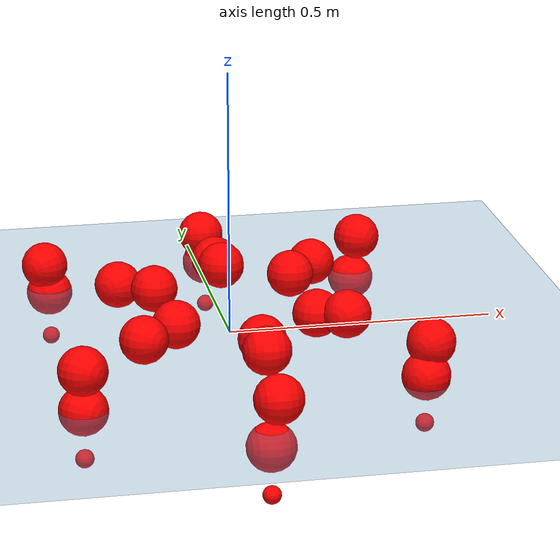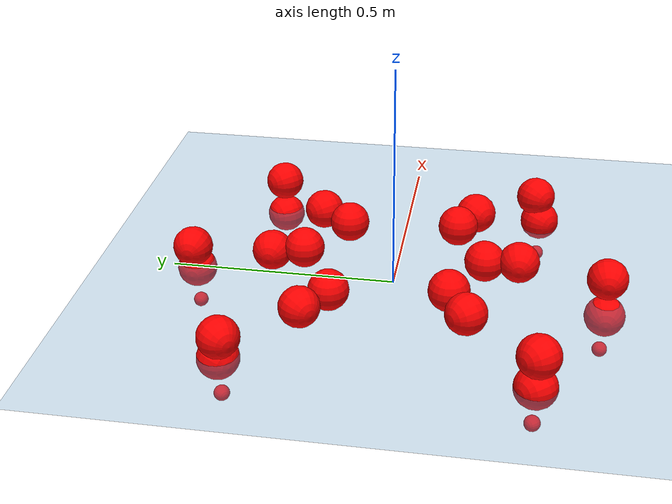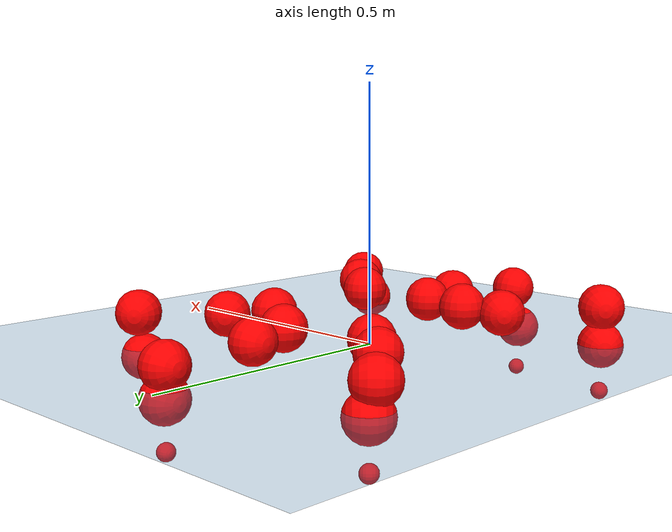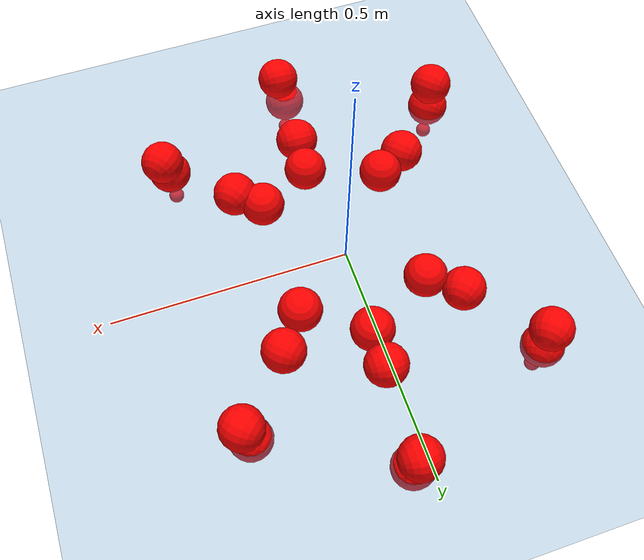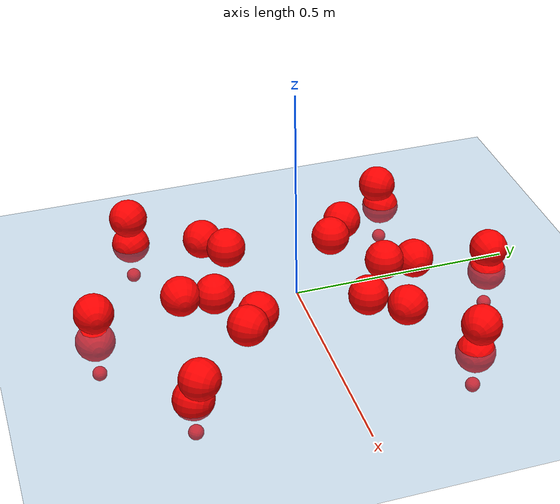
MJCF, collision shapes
<mujoco model="Golem">
  <compiler angle="radian" assetdir="assets" balanceinertia="true" inertiafromgeom="false"/>

  <option timestep="0.005" density="1.2" viscosity="2e-05"/>

  <size nkey="1"/>

  <visual>
    <quality shadowsize="8192"/>
    <map shadowclip="0.5"/>
  </visual>

  <default>
    <default class="/">
      <joint armature="0.01" damping="0.01" frictionloss="0.01"/>
      <geom contype="0" conaffinity="0" group="1" solref="-1000 -80"/>
      <site size="0.01 0.005 0.005" group="5"/>
      <general forcelimited="true" biastype="affine" gainprm="25" biasprm="0 -25 -0.5"/>
      <default class="visual">
        <geom type="mesh" group="2"/>
      </default>
      <default class="collision">
        <geom group="3"/>
      </default>
      <default class="foot">
        <geom size="0.01 0 0" condim="6" group="4" priority="1" solimp="0.015 1 0.01"/>
      </default>
      <default class="reward_collision_sphere">
        <geom group="5" rgba="1 0 0 1"/>
      </default>
    </default>
  </default>

  <asset>
    <texture type="skybox" colorspace="auto" name="//unnamed_texture_0" builtin="gradient" rgb1="0.95 0.95 0.95" rgb2="0.95 0.95 0.95" width="100" height="600"/>
    <texture type="2d" colorspace="auto" name="texplane" builtin="checker" rgb1="0.345 0.575 0.748" rgb2="0.345 0.575 0.748" markrgb="1 1 1" width="512" height="512"/>
    <material name="MatPlane" class="/" texture="texplane" texuniform="true" texrepeat="2 2" specular="0.9"/>
    <mesh name="body" class="/" file="body.stl" scale="0.001 0.001 0.001"/>
    <mesh name="coxa" class="/" file="coxa.stl" scale="0.001 0.001 0.001"/>
    <mesh name="femur" class="/" file="femur.stl" scale="0.001 0.001 0.001"/>
    <mesh name="tibia" class="/" file="tibia.stl" scale="0.001 0.001 0.001"/>
    <mesh name="tarsus" class="/" file="tarsus.stl" scale="0.001 0.001 0.001"/>
  </asset>

  <worldbody>
    <geom name="floor" class="/" size="100 100 0.125" type="plane" group="0" material="MatPlane"/>
    <light name="toplight_shadow" class="/" pos="0 0 5" dir="0.0990148 0.0990148 -0.990148" type="directional" ambient="0.04 0.04 0.04" diffuse="0.55 0.55 0.55" specular="0.12 0.12 0.12"/>
    <light name="toplight_fill" class="/" pos="0 0 5" dir="0.0990148 0.0990148 -0.990148" type="directional" castshadow="false" ambient="0.04 0.04 0.04" diffuse="0.3 0.3 0.3" specular="0.08 0.08 0.08"/>
    <body name="trunk" pos="0.0108915 0.000639555 0.00895836" quat="0.999998 0.00044944 -0.00031866 -0.00199569">
      <inertial pos="0.00417127 0.00598467 0.0144" quat="0.997308 0.0554582 0.0402113 0.0261581" mass="5.71203" diaginertia="0.00496358 0.126513 0.00441562"/>
      <joint name="//unnamed_joint_0" type="free"/>
      <geom name="//unnamed_geom_1" class="/" pos="0 0 0.0529577" quat="1 0 0 0" type="mesh" rgba="0.9 0.9 0.9 1" mesh="body"/>
      <site name="imu" class="/" pos="0.067616 0.0333636 0.125419" size="0.0110936"/>
      <camera name="track" class="/" pos="0 -3.31891 0" quat="0.707107 0.707107 0 0" mode="trackcom"/>
      <camera name="ego_camera" class="/" pos="0.10935 0 0.0827465" quat="-0.5 -0.5 0.5 0.5"/>
      <body name="coxa_RR" pos="-0.149037 -0.149669 0.063729" quat="0.382379 -0.000331457 2.10988e-05 -0.924006">
        <inertial pos="0.00673529 -6.66258e-05 0.00807106" quat="0.998661 -0.0322782 0.00435451 0.0401844" mass="0.316186" diaginertia="0.00402278 0.147123 0.00449888"/>
        <joint name="coxa_joint_RR" class="/" pos="0 0 0" axis="0.04319 -0.0196106 -0.998874" stiffness="0.00158335" range="-2.97897 2.84697" armature="0.0160432" damping="0.0242472" frictionloss="0.0163865"/>
        <geom name="//unnamed_geom_2" class="/" type="mesh" rgba="0.2 0.2 0.2 1" mesh="coxa"/>
        <geom name="//unnamed_geom_3" class="reward_collision_sphere" size="0.0443743" pos="-0.0252346 0 0"/>
        <body name="femur_RR" pos="0.0489996 -0.0164494 -0.00931737" quat="0.499989 -0.499148 0.501537 0.499322">
          <inertial pos="0.00736881 -0.0143847 -0.015938" quat="0.999722 0.00680263 0.0221983 0.00410931" mass="0.272759" diaginertia="0.00353569 0.113181 0.00312394"/>
          <joint name="femur_joint_RR" class="/" pos="0 0 0" axis="0.0112768 0.028098 -0.999542" stiffness="0.025421" range="-3.22714 3.12068" armature="0.00748102" damping="0" frictionloss="0.00213925"/>
          <geom name="//unnamed_geom_4" class="/" type="mesh" rgba="0.9 0.9 0.9 1" mesh="femur"/>
          <geom name="//unnamed_geom_5" class="reward_collision_sphere" size="0.0443743"/>
          <body name="tibia_RR" pos="-0.00804328 -0.193749 0.0154509" quat="-0.000365158 0.999999 -0.000765471 0.000815668">
            <inertial pos="-0.00925428 0.0149623 -0.0017914" quat="0.999895 -0.00985978 -0.0103159 -0.00269784" mass="0.246398" diaginertia="0.00411365 0.124869 0.00389356"/>
            <joint name="tibia_joint_RR" class="/" pos="0 0 0" axis="0.00516137 0.00287477 0.999983" range="-3.1394 3.12158" armature="0.00980488" damping="0" frictionloss="0.0167903"/>
            <geom name="//unnamed_geom_6" class="/" type="mesh" rgba="0.2 0.2 0.2 1" mesh="tibia"/>
            <geom name="//unnamed_geom_7" class="reward_collision_sphere" size="0.0443743"/>
            <body name="tarsus_RR" pos="0.0739086 -0.000269523 0.000919166" quat="0.999999 -0.00132655 -0.000216217 -0.000598676">
              <inertial pos="0.0604778 -0.0024474 0.00303122" quat="0.502897 0.519999 0.514802 0.460081" mass="0.227057" diaginertia="0.0033703 0.131126 0.00357416"/>
              <joint name="tarsus_joint_RR" class="/" pos="0 0 0" axis="0.0245233 -0.0202573 0.999494" stiffness="0.00348212" range="-2.82267 2.81164" armature="0.00975341" damping="0" frictionloss="0.0104391"/>
              <geom name="//unnamed_geom_8" class="/" type="mesh" rgba="0.9 0.9 0.9 1" mesh="tarsus"/>
              <geom name="foot_1" class="foot" size="0.00673382" pos="0.0942094 0 0" quat="0 -0.707107 0 0.707107"/>
              <geom name="//unnamed_geom_10" class="reward_collision_sphere" size="0.0443743"/>
              <geom name="//unnamed_geom_11" class="reward_collision_sphere" size="0.0166404" pos="0.0904242 0 0"/>
              <site name="foot_1" class="foot" pos="0.0942094 0 0" quat="0 -0.707107 0 0.707107" size="0.0110936"/>
            </body>
          </body>
        </body>
      </body>
      <body name="coxa_RM" pos="0.0147498 -0.221489 0.0496378" quat="0.706343 0.00336189 -0.00217824 -0.707858">
        <inertial pos="-0.00210948 0.00985296 -0.000309399" quat="0.997019 -0.050608 0.056208 0.015239" mass="0.218531" diaginertia="0.00328648 0.122566 0.00330748"/>
        <joint name="coxa_joint_RM" class="/" pos="0 0 0" axis="-0.0304309 -0.00355429 -0.999531" stiffness="0.00230136" range="-3.04414 3.05668" armature="0.0111029" damping="0" frictionloss="0.0129757"/>
        <geom name="//unnamed_geom_12" class="/" type="mesh" rgba="0.2 0.2 0.2 1" mesh="coxa"/>
        <geom name="//unnamed_geom_13" class="reward_collision_sphere" size="0.0443743" pos="-0.0252346 0 0"/>
        <body name="femur_RM" pos="0.0492416 -0.00467122 0.00727835" quat="0.494165 -0.500137 0.502174 0.503472">
          <inertial pos="0.0147974 0.00950182 0.016215" quat="0.99988 -0.00652031 0.00497886 0.0131655" mass="0.229807" diaginertia="0.00442124 0.125389 0.00349927"/>
          <joint name="femur_joint_RM" class="/" pos="0 0 0" axis="-0.0444176 0.0106113 -0.998957" range="-3.24991 2.84978" armature="0.00748521" damping="0.012832" frictionloss="0.0187767"/>
          <geom name="//unnamed_geom_14" class="/" type="mesh" rgba="0.9 0.9 0.9 1" mesh="femur"/>
          <geom name="//unnamed_geom_15" class="reward_collision_sphere" size="0.0443743"/>
          <body name="tibia_RM" pos="0.0118354 -0.189042 -0.0158163" quat="0.00245787 0.999991 0.000601329 0.00353714">
            <inertial pos="-0.00378533 -0.00593537 0.00291645" quat="0.999992 0.00269618 0.00154849 0.00252073" mass="0.24046" diaginertia="0.00329893 0.100486 0.0033724"/>
            <joint name="tibia_joint_RM" class="/" pos="0 0 0" axis="-0.0730309 0.00305475 0.997325" stiffness="0.00871049" range="-3.28514 3.40638" armature="0.0129078" damping="0.0542315" frictionloss="0.00656408"/>
            <geom name="//unnamed_geom_16" class="/" type="mesh" rgba="0.2 0.2 0.2 1" mesh="tibia"/>
            <geom name="//unnamed_geom_17" class="reward_collision_sphere" size="0.0443743"/>
            <body name="tarsus_RM" pos="0.0854919 0.00292508 0.0143417" quat="0.999998 -0.000996777 0.00144128 -0.000577781">
              <inertial pos="0.0559637 -6.53161e-05 -0.0109465" quat="0.472891 0.514901 0.539796 0.468904" mass="0.252771" diaginertia="0.00336453 0.116186 0.00425019"/>
              <joint name="tarsus_joint_RM" class="/" pos="0 0 0" axis="0.0323237 0.00963686 0.999431" stiffness="0.021899" range="-2.86896 3.44225" armature="0.0106555" damping="0" frictionloss="0.0141283"/>
              <geom name="//unnamed_geom_18" class="/" type="mesh" rgba="0.9 0.9 0.9 1" mesh="tarsus"/>
              <geom name="foot_2" class="foot" size="0.00842486" pos="0.0942094 0 0" quat="0 -0.707107 0 0.707107"/>
              <geom name="//unnamed_geom_20" class="reward_collision_sphere" size="0.0443743"/>
              <geom name="//unnamed_geom_21" class="reward_collision_sphere" size="0.0166404" pos="0.0904242 0 0"/>
              <site name="foot_2" class="foot" pos="0.0942094 0 0" quat="0 -0.707107 0 0.707107" size="0.0110936"/>
            </body>
          </body>
        </body>
      </body>
      <body name="coxa_RF" pos="0.14597 -0.145966 0.0659513" quat="0.924811 0.00026081 0.00416914 -0.380403">
        <inertial pos="-0.00704853 0.0169582 -0.00480071" quat="0.999538 -0.0240258 -0.0059189 0.0176648" mass="0.257561" diaginertia="0.00401008 0.104359 0.00320939"/>
        <joint name="coxa_joint_RF" class="/" pos="0 0 0" axis="0.0180726 0.0285222 -0.99943" stiffness="0.0272087" range="-3.13731 2.91609" armature="0.0127386" damping="0.0672967" frictionloss="0.011263"/>
        <geom name="//unnamed_geom_22" class="/" type="mesh" rgba="0.2 0.2 0.2 1" mesh="coxa"/>
        <geom name="//unnamed_geom_23" class="reward_collision_sphere" size="0.0443743" pos="-0.0252346 0 0"/>
        <body name="femur_RF" pos="0.0350648 0.00836301 0.00890133" quat="0.500057 -0.499553 0.500325 0.500065">
          <inertial pos="-0.0037377 -0.000445716 -0.0123521" quat="0.999575 0.00732359 0.0222958 -0.0172764" mass="0.276739" diaginertia="0.00410991 0.133517 0.00350051"/>
          <joint name="femur_joint_RF" class="/" pos="0 0 0" axis="0.00185224 0.00473283 -0.999987" range="-3.43022 3.03856" armature="0.0117937" damping="0.00664623" frictionloss="0.0175533"/>
          <geom name="//unnamed_geom_24" class="/" type="mesh" rgba="0.9 0.9 0.9 1" mesh="femur"/>
          <geom name="//unnamed_geom_25" class="reward_collision_sphere" size="0.0443743"/>
          <body name="tibia_RF" pos="0.0106569 -0.182137 -0.0079983" quat="4.16811e-05 1 -7.67003e-06 3.00077e-05">
            <inertial pos="-0.0109822 0.00874105 -0.000326917" quat="0.997012 -0.0682503 0.0189543 -0.0308141" mass="0.248632" diaginertia="0.00431658 0.142044 0.00376202"/>
            <joint name="tibia_joint_RF" class="/" pos="0 0 0" axis="0.0214829 0.0557598 0.998213" range="-3.13285 3.12948" armature="0.00842668" damping="0" frictionloss="0.0124733"/>
            <geom name="//unnamed_geom_26" class="/" type="mesh" rgba="0.2 0.2 0.2 1" mesh="tibia"/>
            <geom name="//unnamed_geom_27" class="reward_collision_sphere" size="0.0443743"/>
            <body name="tarsus_RF" pos="0.057983 0.00168229 0.016908" quat="0.999989 -0.00341285 -0.000533963 -0.0032037">
              <inertial pos="0.0424809 0.0132589 -0.00632801" quat="0.517399 0.492092 0.512434 0.477028" mass="0.324265" diaginertia="0.00421014 0.145325 0.00343853"/>
              <joint name="tarsus_joint_RF" class="/" pos="0 0 0" axis="-0.0631272 0.00479647 0.997994" stiffness="0.0184565" range="-2.90221 3.13714" armature="0.0112893" damping="0" frictionloss="0.014483"/>
              <geom name="//unnamed_geom_28" class="/" type="mesh" rgba="0.9 0.9 0.9 1" mesh="tarsus"/>
              <geom name="foot_3" class="foot" size="0.00938455" pos="0.0942094 0 0" quat="0 -0.707107 0 0.707107"/>
              <geom name="//unnamed_geom_30" class="reward_collision_sphere" size="0.0443743"/>
              <geom name="//unnamed_geom_31" class="reward_collision_sphere" size="0.0166404" pos="0.0904242 0 0"/>
              <site name="foot_3" class="foot" pos="0.0942094 0 0" quat="0 -0.707107 0 0.707107" size="0.0110936"/>
            </body>
          </body>
        </body>
      </body>
      <body name="coxa_LR" pos="-0.152815 0.138506 0.0417673" quat="0.385739 -0.0025197 -1.98842e-05 0.922604">
        <inertial pos="0.00445351 0.00484994 -0.0132238" quat="0.999903 -0.000113417 0.0116752 -0.00763341" mass="0.268103" diaginertia="0.00387517 0.118537 0.00421343"/>
        <joint name="coxa_joint_LR" class="/" pos="0 0 0" axis="0.0020374 -0.0178366 -0.999839" stiffness="0.0596271" range="-2.97017 3.00724" armature="0.0155879" damping="0.0167955" frictionloss="0.0193491"/>
        <geom name="//unnamed_geom_32" class="/" type="mesh" rgba="0.2 0.2 0.2 1" mesh="coxa"/>
        <geom name="//unnamed_geom_33" class="reward_collision_sphere" size="0.0443743" pos="-0.0252346 0 0"/>
        <body name="femur_LR" pos="0.05408 0.0104763 -0.00474377" quat="0.49798 -0.501501 0.500879 0.499633">
          <inertial pos="-0.0139127 0.00792711 -0.0115717" quat="0.999399 0.0295382 -0.0175206 0.00480272" mass="0.332551" diaginertia="0.00436715 0.127741 0.00406936"/>
          <joint name="femur_joint_LR" class="/" pos="0 0 0" axis="0.000204896 0.000302297 1" range="-2.82114 3.42806" armature="0.0191545" damping="0" frictionloss="0.0106316"/>
          <geom name="//unnamed_geom_34" class="/" type="mesh" rgba="0.9 0.9 0.9 1" mesh="femur"/>
          <geom name="//unnamed_geom_35" class="reward_collision_sphere" size="0.0443743"/>
          <body name="tibia_LR" pos="-0.00154072 -0.185233 -0.005446" quat="-0.000429989 0.99999 0.0039841 0.00199317">
            <inertial pos="-0.00919999 0.0118876 -0.000537265" quat="0.999999 0.00105302 -0.000642929 0.00080393" mass="0.234795" diaginertia="0.00399627 0.106951 0.00444684"/>
            <joint name="tibia_joint_LR" class="/" pos="0 0 0" axis="0.0329887 0.0591815 -0.997702" stiffness="0.0451487" range="-3.21069 3.40054" armature="0.0148378" damping="0" frictionloss="0.0108903"/>
            <geom name="//unnamed_geom_36" class="/" type="mesh" rgba="0.2 0.2 0.2 1" mesh="tibia"/>
            <geom name="//unnamed_geom_37" class="reward_collision_sphere" size="0.0443743"/>
            <body name="tarsus_LR" pos="0.0588275 -0.000611509 0.0106587" quat="0.999973 -0.00677435 0.00203713 0.00172471">
              <inertial pos="0.0635355 0.0124833 0.00620995" quat="0.49921 0.501079 0.496855 0.502836" mass="0.275742" diaginertia="0.00441236 0.153372 0.00354303"/>
              <joint name="tarsus_joint_LR" class="/" pos="0 0 0" axis="0.00166052 -0.00726817 -0.999972" stiffness="0.047969" range="-3.1123 3.1043" armature="0.00673207" damping="0" frictionloss="0.00342845"/>
              <geom name="//unnamed_geom_38" class="/" type="mesh" rgba="0.9 0.9 0.9 1" mesh="tarsus"/>
              <geom name="foot_4" class="foot" size="0.0100212" pos="0.0942094 0 0" quat="0.707107 0 -0.707107 0"/>
              <geom name="//unnamed_geom_40" class="reward_collision_sphere" size="0.0443743"/>
              <geom name="//unnamed_geom_41" class="reward_collision_sphere" size="0.0166404" pos="0.0904242 0 0"/>
              <site name="foot_4" class="foot" pos="0.0942094 0 0" quat="0.707107 0 -0.707107 0" size="0.0110936"/>
            </body>
          </body>
        </body>
      </body>
      <body name="coxa_LM" pos="0.00743428 0.226387 0.0515018" quat="0.70714 0.000131969 3.46894e-05 0.707073">
        <inertial pos="-0.0135536 -0.00113467 -0.00679098" quat="0.9994 -0.0203221 0.0244758 -0.0136776" mass="0.320706" diaginertia="0.00390582 0.146538 0.00484637"/>
        <joint name="coxa_joint_LM" class="/" pos="0 0 0" axis="-0.000344287 -0.00195531 -0.999998" range="-3.20614 3.15388" armature="0.0100215" damping="0.0531383" frictionloss="0.0166402"/>
        <geom name="//unnamed_geom_42" class="/" type="mesh" rgba="0.2 0.2 0.2 1" mesh="coxa"/>
        <geom name="//unnamed_geom_43" class="reward_collision_sphere" size="0.0443743" pos="-0.0252346 0 0"/>
        <body name="femur_LM" pos="0.047766 0.00149075 -0.012533" quat="0.500038 -0.499859 0.500041 0.500061">
          <inertial pos="-0.0102455 0.000126081 0.00916018" quat="0.999481 0.0290795 0.0134791 -0.0033204" mass="0.255828" diaginertia="0.0043852 0.112001 0.00278844"/>
          <joint name="femur_joint_LM" class="/" pos="0 0 0" axis="0.0503529 0.0566227 0.997125" range="-3.43374 3.30585" armature="0.0133495" damping="0.0915189" frictionloss="0.0110667"/>
          <geom name="//unnamed_geom_44" class="/" type="mesh" rgba="0.9 0.9 0.9 1" mesh="femur"/>
          <geom name="//unnamed_geom_45" class="reward_collision_sphere" size="0.0443743"/>
          <body name="tibia_LM" pos="0.00977536 -0.185149 -0.00259718" quat="-0.0031101 0.999995 0.000362779 -0.000316055">
            <inertial pos="0.0147964 0.000745968 0.000708373" quat="0.999476 -0.0305505 -0.00271581 -0.0103737" mass="0.25036" diaginertia="0.00407369 0.119933 0.00331945"/>
            <joint name="tibia_joint_LM" class="/" pos="0 0 0" axis="-0.00107036 -0.00244865 -0.999996" range="-3.25864 3.30502" armature="0.0173416" damping="0" frictionloss="0.0203978"/>
            <geom name="//unnamed_geom_46" class="/" type="mesh" rgba="0.2 0.2 0.2 1" mesh="tibia"/>
            <geom name="//unnamed_geom_47" class="reward_collision_sphere" size="0.0443743"/>
            <body name="tarsus_LM" pos="0.0595153 -0.00341751 0.00685885" quat="0.999995 -0.000501518 -0.00311837 -0.0009399">
              <inertial pos="0.0629129 0.000415525 0.0102852" quat="0.496345 0.447255 0.517944 0.534171" mass="0.255941" diaginertia="0.0043927 0.125157 0.00402753"/>
              <joint name="tarsus_joint_LM" class="/" pos="0 0 0" axis="0.0219138 0.00209461 -0.999758" stiffness="0.00410744" range="-3.37699 3.15502" armature="0.00751479" damping="0" frictionloss="0.0095518"/>
              <geom name="//unnamed_geom_48" class="/" type="mesh" rgba="0.9 0.9 0.9 1" mesh="tarsus"/>
              <geom name="foot_5" class="foot" size="0.00408029" pos="0.0942094 0 0" quat="0.707107 0 -0.707107 0"/>
              <geom name="//unnamed_geom_50" class="reward_collision_sphere" size="0.0443743"/>
              <geom name="//unnamed_geom_51" class="reward_collision_sphere" size="0.0166404" pos="0.0904242 0 0"/>
              <site name="foot_5" class="foot" pos="0.0942094 0 0" quat="0.707107 0 -0.707107 0" size="0.0110936"/>
            </body>
          </body>
        </body>
      </body>
      <body name="coxa_LF" pos="0.145268 0.137961 0.054786" quat="0.924369 -0.00305263 0.00158098 0.381483">
        <inertial pos="0.00100023 0.0158303 0.00531329" quat="0.997619 0.0288043 0.0602514 0.0172023" mass="0.201075" diaginertia="0.00341269 0.106316 0.00326043"/>
        <joint name="coxa_joint_LF" class="/" pos="0 0 0" axis="0.0423347 0.0238531 -0.998819" stiffness="0.0581362" range="-3.37152 3.13893" armature="0.00603472" damping="0" frictionloss="0.0182091"/>
        <geom name="//unnamed_geom_52" class="/" type="mesh" rgba="0.2 0.2 0.2 1" mesh="coxa"/>
        <geom name="//unnamed_geom_53" class="reward_collision_sphere" size="0.0443743" pos="-0.0252346 0 0"/>
        <body name="femur_LF" pos="0.0636441 0.0109459 -0.00328747" quat="0.502029 -0.499027 0.499957 0.498981">
          <inertial pos="0.00103125 -0.010534 0.0135792" quat="0.999647 0.00864218 -0.0214088 -0.0131559" mass="0.241726" diaginertia="0.00338057 0.109969 0.00391365"/>
          <joint name="femur_joint_LF" class="/" pos="0 0 0" axis="-0.0270834 -0.00751612 0.999605" stiffness="0.0714735" range="-3.04153 3.12118" armature="0.00502447" damping="0" frictionloss="0.0109517"/>
          <geom name="//unnamed_geom_54" class="/" type="mesh" rgba="0.9 0.9 0.9 1" mesh="femur"/>
          <geom name="//unnamed_geom_55" class="reward_collision_sphere" size="0.0443743"/>
          <body name="tibia_LF" pos="-0.00386834 -0.168965 0.00428159" quat="0.000259987 1 0.000320682 0.000765012">
            <inertial pos="-0.0146288 -0.0147141 -0.0163188" quat="0.999444 0.0144864 -0.0161241 0.0253186" mass="0.269024" diaginertia="0.0040269 0.107815 0.00304763"/>
            <joint name="tibia_joint_LF" class="/" pos="0 0 0" axis="-0.0386509 -0.00461631 -0.999242" range="-3.35866 3.43218" armature="0.0136903" damping="0.000792917" frictionloss="0.016856"/>
            <geom name="//unnamed_geom_56" class="/" type="mesh" rgba="0.2 0.2 0.2 1" mesh="tibia"/>
            <geom name="//unnamed_geom_57" class="reward_collision_sphere" size="0.0443743"/>
            <body name="tarsus_LF" pos="0.0837414 -0.0105075 -0.00668073" quat="1 4.38348e-05 2.8719e-06 -2.15524e-05">
              <inertial pos="0.0612886 0.00581292 -0.0146421" quat="0.544226 0.510726 0.458923 0.482044" mass="0.267772" diaginertia="0.00342405 0.12411 0.00304132"/>
              <joint name="tarsus_joint_LF" class="/" pos="0 0 0" axis="0.00695147 -0.005072 -0.999963" range="-2.87876 3.43981" armature="0.00541251" damping="0" frictionloss="0.00583365"/>
              <geom name="//unnamed_geom_58" class="/" type="mesh" rgba="0.9 0.9 0.9 1" mesh="tarsus"/>
              <geom name="foot_6" class="foot" size="0.00667797" pos="0.0942094 0 0" quat="0.707107 0 -0.707107 0"/>
              <geom name="//unnamed_geom_60" class="reward_collision_sphere" size="0.0443743"/>
              <geom name="//unnamed_geom_61" class="reward_collision_sphere" size="0.0166404" pos="0.0904242 0 0"/>
              <site name="foot_6" class="foot" pos="0.0942094 0 0" quat="0.707107 0 -0.707107 0" size="0.0110936"/>
            </body>
          </body>
        </body>
      </body>
    </body>
  </worldbody>

  <contact>
    <pair class="/" geom1="floor" geom2="foot_1" name="//unnamed_contact_0"/>
    <pair class="/" geom1="floor" geom2="foot_2" name="//unnamed_contact_1"/>
    <pair class="/" geom1="floor" geom2="foot_3" name="//unnamed_contact_2"/>
    <pair class="/" geom1="floor" geom2="foot_4" name="//unnamed_contact_3"/>
    <pair class="/" geom1="floor" geom2="foot_5" name="//unnamed_contact_4"/>
    <pair class="/" geom1="floor" geom2="foot_6" name="//unnamed_contact_5"/>
  </contact>

  <actuator>
    <general name="coxa_joint_RR" class="/" joint="coxa_joint_RR" forcerange="-9.64212 9.64212" gainprm="16.5677" biasprm="0 -16.5677 -0.538792"/>
    <general name="femur_joint_RR" class="/" joint="femur_joint_RR" forcerange="-7.92649 7.92649" gainprm="16.5677" biasprm="0 -16.5677 -0.538792"/>
    <general name="tibia_joint_RR" class="/" joint="tibia_joint_RR" forcerange="-8.36076 8.36076" gainprm="16.5677" biasprm="0 -16.5677 -0.538792"/>
    <general name="tarsus_joint_RR" class="/" joint="tarsus_joint_RR" forcerange="-7.30773 7.30773" gainprm="16.5677" biasprm="0 -16.5677 -0.538792"/>
    <general name="coxa_joint_RM" class="/" joint="coxa_joint_RM" forcerange="-8.84986 8.84986" gainprm="16.5677" biasprm="0 -16.5677 -0.538792"/>
    <general name="femur_joint_RM" class="/" joint="femur_joint_RM" forcerange="-7.91832 7.91832" gainprm="16.5677" biasprm="0 -16.5677 -0.538792"/>
    <general name="tibia_joint_RM" class="/" joint="tibia_joint_RM" forcerange="-7.87151 7.87151" gainprm="16.5677" biasprm="0 -16.5677 -0.538792"/>
    <general name="tarsus_joint_RM" class="/" joint="tarsus_joint_RM" forcerange="-11.6955 11.6955" gainprm="16.5677" biasprm="0 -16.5677 -0.538792"/>
    <general name="coxa_joint_RF" class="/" joint="coxa_joint_RF" forcerange="-8.81124 8.81124" gainprm="16.5677" biasprm="0 -16.5677 -0.538792"/>
    <general name="femur_joint_RF" class="/" joint="femur_joint_RF" forcerange="-7.93134 7.93134" gainprm="16.5677" biasprm="0 -16.5677 -0.538792"/>
    <general name="tibia_joint_RF" class="/" joint="tibia_joint_RF" forcerange="-8.36385 8.36385" gainprm="16.5677" biasprm="0 -16.5677 -0.538792"/>
    <general name="tarsus_joint_RF" class="/" joint="tarsus_joint_RF" forcerange="-9.74848 9.74848" gainprm="16.5677" biasprm="0 -16.5677 -0.538792"/>
    <general name="coxa_joint_LR" class="/" joint="coxa_joint_LR" forcerange="-10.1723 10.1723" gainprm="16.5677" biasprm="0 -16.5677 -0.538792"/>
    <general name="femur_joint_LR" class="/" joint="femur_joint_LR" forcerange="-12.1062 12.1062" gainprm="16.5677" biasprm="0 -16.5677 -0.538792"/>
    <general name="tibia_joint_LR" class="/" joint="tibia_joint_LR" forcerange="-6.89633 6.89633" gainprm="16.5677" biasprm="0 -16.5677 -0.538792"/>
    <general name="tarsus_joint_LR" class="/" joint="tarsus_joint_LR" forcerange="-8.34948 8.34948" gainprm="16.5677" biasprm="0 -16.5677 -0.538792"/>
    <general name="coxa_joint_LM" class="/" joint="coxa_joint_LM" forcerange="-8.35003 8.35003" gainprm="16.5677" biasprm="0 -16.5677 -0.538792"/>
    <general name="femur_joint_LM" class="/" joint="femur_joint_LM" forcerange="-10.6925 10.6925" gainprm="16.5677" biasprm="0 -16.5677 -0.538792"/>
    <general name="tibia_joint_LM" class="/" joint="tibia_joint_LM" forcerange="-8.01409 8.01409" gainprm="16.5677" biasprm="0 -16.5677 -0.538792"/>
    <general name="tarsus_joint_LM" class="/" joint="tarsus_joint_LM" forcerange="-5.15156 5.15156" gainprm="16.5677" biasprm="0 -16.5677 -0.538792"/>
    <general name="coxa_joint_LF" class="/" joint="coxa_joint_LF" forcerange="-10.0097 10.0097" gainprm="16.5677" biasprm="0 -16.5677 -0.538792"/>
    <general name="femur_joint_LF" class="/" joint="femur_joint_LF" forcerange="-4.61467 4.61467" gainprm="16.5677" biasprm="0 -16.5677 -0.538792"/>
    <general name="tibia_joint_LF" class="/" joint="tibia_joint_LF" forcerange="-7.97018 7.97018" gainprm="16.5677" biasprm="0 -16.5677 -0.538792"/>
    <general name="tarsus_joint_LF" class="/" joint="tarsus_joint_LF" forcerange="-13.1485 13.1485" gainprm="16.5677" biasprm="0 -16.5677 -0.538792"/>
  </actuator>

  <sensor>
    <gyro site="imu" name="imu_angular_velocity"/>
    <velocimeter site="imu" name="imu_linear_velocity"/>
    <framelinvel objtype="site" objname="foot_1" name="foot_1_global_linear_velocity"/>
    <framelinvel objtype="site" objname="foot_2" name="foot_2_global_linear_velocity"/>
    <framelinvel objtype="site" objname="foot_3" name="foot_3_global_linear_velocity"/>
    <framelinvel objtype="site" objname="foot_4" name="foot_4_global_linear_velocity"/>
    <framelinvel objtype="site" objname="foot_5" name="foot_5_global_linear_velocity"/>
    <framelinvel objtype="site" objname="foot_6" name="foot_6_global_linear_velocity"/>
  </sensor>

  <keyframe>
    <key name="home" qpos="0 0 0.1457 1 0 0 0 0 0 0 0 0 0 0 0 0 0 0 0 0 0 0 0 0 0 0 0 0 0 0 0"/>
  </keyframe>
</mujoco>
